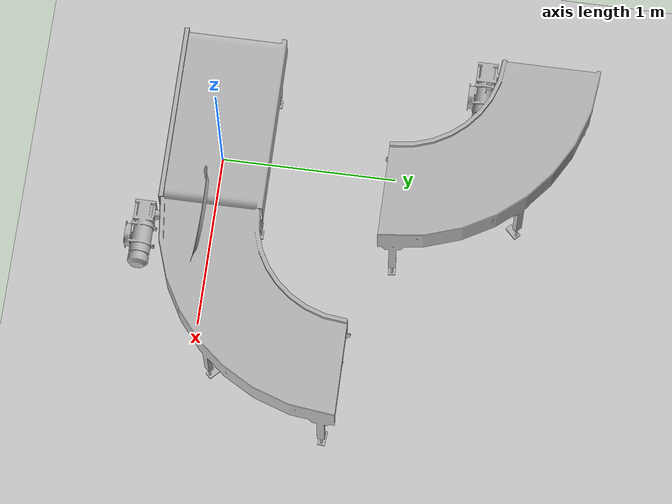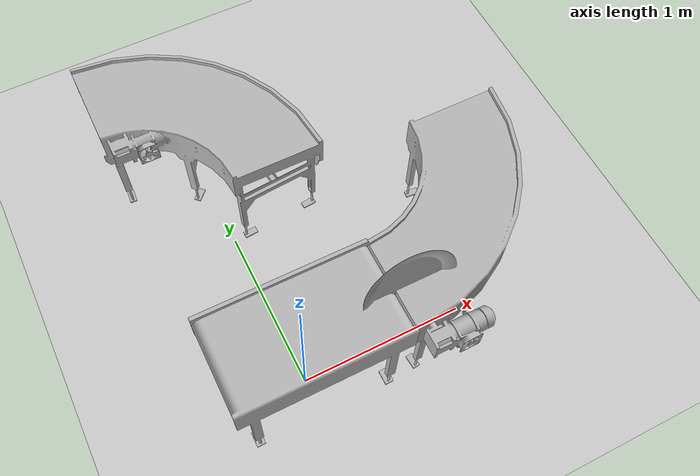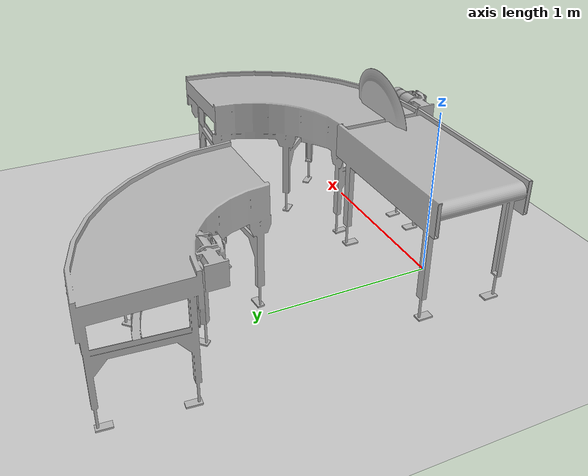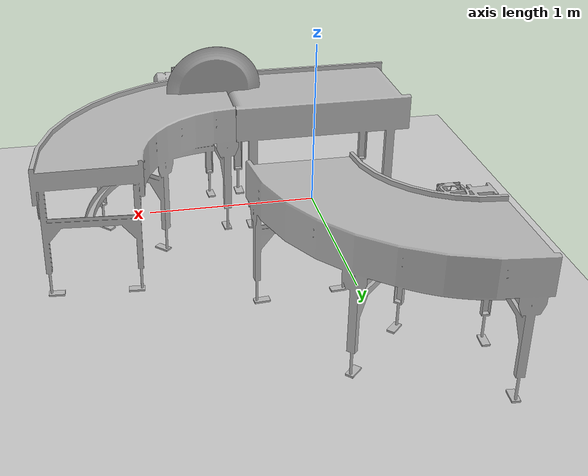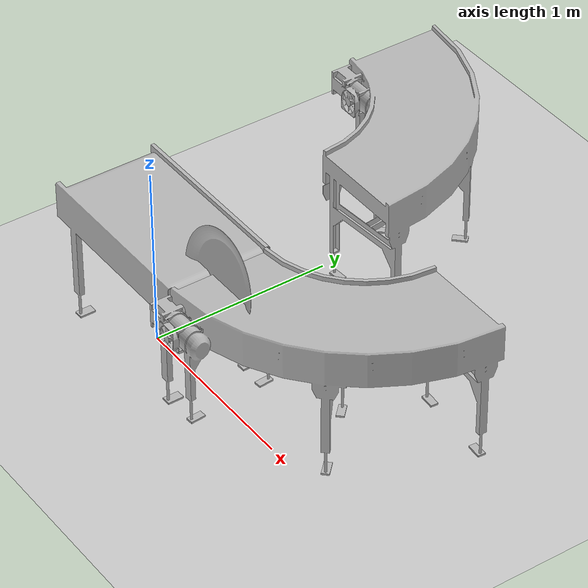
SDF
<?xml version="1.0" ?>
<sdf version="1.8">
  <world name="conveyor_world">
    <!-- Physics Plugin -->
    <physics name="1ms" type="ignored">
      <max_step_size>0.001</max_step_size>
      <real_time_factor>1.0</real_time_factor>
    </physics>

    <!-- Essential Plugins for GUI and Interaction -->
    <plugin
      filename="gz-sim-physics-system"
      name="gz::sim::systems::Physics">
    </plugin>
    <plugin
      filename="gz-sim-user-commands-system"
      name="gz::sim::systems::UserCommands">
    </plugin>
    <plugin
      filename="gz-sim-scene-broadcaster-system"
      name="gz::sim::systems::SceneBroadcaster">
    </plugin>
    <plugin filename="gz-sim-sensors-system" name="gz::sim::systems::Sensors">
      <render_engine>ogre2</render_engine>
    </plugin>

    <!-- Light Source -->
    <light type="directional" name="sun">
      <cast_shadows>true</cast_shadows>
      <pose>0 0 10 0 0 0</pose>
      <diffuse>0.8 0.8 0.8 1</diffuse>
      <specular>0.2 0.2 0.2 1</specular>
      <attenuation>
        <range>1000</range>
        <constant>0.9</constant>
        <linear>0.01</linear>
        <quadratic>0.001</quadratic>
      </attenuation>
      <direction>-0.5 0.1 -0.9</direction>
    </light>

    <!-- Ground Plane -->
    <model name="ground_plane">
      <static>true</static>
      <link name="link">
        <collision name="collision">
          <geometry>
            <plane>
              <normal>0 0 1</normal>
              <size>100 100</size>
            </plane>
          </geometry>
        </collision>
        <visual name="visual">
          <geometry>
            <plane>
              <normal>0 0 1</normal>
              <size>100 100</size>
            </plane>
          </geometry>
          <material>
            <ambient>0.8 0.8 0.8 1</ambient>
            <diffuse>0.8 0.8 0.8 1</diffuse>
            <specular>0.8 0.8 0.8 1</specular>
          </material>
        </visual>
      </link>
    </model>

    <!-- Include your custom conveyor models -->

    <include>
      <name>left</name>
      <uri>model://left_1m</uri>
      <pose>1.04 0.2812 0 0 0 0</pose>
    </include>
    <include>
      <name>straight</name>
      <uri>model://straight_1m</uri>
      <pose>0 0 -0.01080 0 0 0</pose>
    </include>
    <include>
      <name>right</name>
      <uri>model://right_1m</uri>
      <pose>0 1.5 0 0 0 0</pose>
    </include>
    <include>
      <name>plate</name>
      <uri>model://plate</uri>
      <pose>0.6 0 0.76 0 0 0</pose>
    </include>

  </world>
</sdf>

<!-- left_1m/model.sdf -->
<sdf version="1.6">
  <model name="left_1m">
    <static>false</static>
    <link name="link">
      <collision name="collision">
        <!-- Offset applied here to align feet to ground -->
        <pose>0 0 0.597456 0 0 0</pose>
        <geometry>
          <mesh>
            <uri>model://left_1m/meshes/col_left_1m.obj</uri>
            <scale>1 1 1</scale>
          </mesh>
        </geometry>
      </collision>

      <visual name="visual">
        <!-- Offset applied here to align feet to ground -->
        <pose>0 0 0.597456 0 0 0</pose>
        <geometry>
          <mesh>
            <uri>model://left_1m/meshes/left_1m.obj</uri>
            <scale>1 1 1</scale>
          </mesh>
        </geometry>
      </visual>
    </link>
  </model>
</sdf>

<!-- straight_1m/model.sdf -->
<sdf version="1.6">
  <model name="straight_1m">
    <static>false</static>
    <link name="link">
      <collision name="collision">
        <!-- Offset applied here to align feet to ground -->
        <pose>0 0 0.697456 0 0 0</pose>
        <geometry>
          <mesh>
            <uri>model://straight_1m/meshes/col_straight_1m.obj</uri>
            <scale>1 1 1</scale>
          </mesh>
        </geometry>
      </collision>

      <visual name="visual">
        <!-- Offset applied here to align feet to ground -->
        <pose>0 0 0.697456 0 0 0</pose>
        <geometry>
          <mesh>
            <uri>model://straight_1m/meshes/col_straight_1m.obj</uri>
            <scale>1 1 1</scale>
          </mesh>
        </geometry>
      </visual>
    </link>
  </model>
</sdf>

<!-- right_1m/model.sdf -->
<sdf version="1.6">
  <model name="right_1m">
    <static>false</static>
    <link name="link">
      <collision name="collision">
        <!-- Offset applied here to align feet to ground -->
        <pose>0 0 0.597456 0 0 0</pose>
        <geometry>
          <mesh>
            <uri>model://right_1m/meshes/col_right_1m.obj</uri>
            <scale>1 1 1</scale>
          </mesh>
        </geometry>
      </collision>

      <visual name="visual">
        <!-- Offset applied here to align feet to ground -->
        <pose>0 0 0.597456 0 0 0</pose>
        <geometry>
          <mesh>
            <uri>model://right_1m/meshes/right_1m.obj</uri>
            <scale>1 1 1</scale>
          </mesh>
        </geometry>
      </visual>
    </link>
  </model>
</sdf>

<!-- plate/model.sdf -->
<sdf version="1.6">
  <model name="plate">
    <static>false</static>
    <link name="link">
      <collision name="collision">
        <!-- Offset applied here to align feet to ground -->
        <pose>0 0 0 1.41 0 0</pose>
        <geometry>
          <mesh>
            <uri>model://plate/meshes/plate.stl</uri>
            <scale>0.001 0.001 0.001</scale>
          </mesh>
        </geometry>
      </collision>

      <visual name="visual">
        <!-- Offset applied here to align feet to ground -->
        <pose>0 0 0 1.41 0 0</pose>
        <geometry>
          <mesh>
            <uri>model://plate/meshes/plate.stl</uri>
            <scale>0.001 0.001 0.001</scale>
          </mesh>
        </geometry>
      </visual>
    </link>
  </model>
</sdf>
